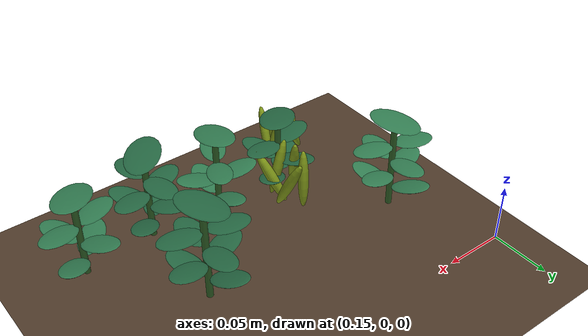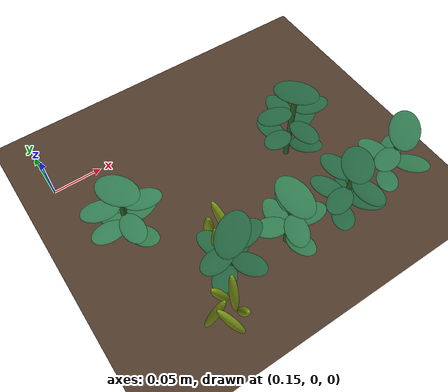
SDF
<sdf version="1.9">
 <world name="jim_field">
  <model name="ground_plane">
   <static>true</static>
   <link name="link">
    <collision name="collision">
     <geometry><plane><normal>0 0 1</normal><size>40 40</size></plane></geometry>
    </collision>
    <visual name="visual">
     <geometry><plane><normal>0 0 1</normal><size>40 40</size></plane></geometry>
     <material>
      <ambient>0.20 0.15 0.11 1</ambient>
      <diffuse>0.30 0.22 0.16 1</diffuse>
      <specular>0.01 0.01 0.01 1</specular>
     </material>
    </visual>
   </link>
  </model>
  <model name="field">
   <static>true</static>
   <pose>0.1837 -0.2516 0 0 0 0</pose>
   <model name="crop_111">
    <static>true</static>
    <pose>0.0625 0.0878 0 0 0 0</pose>
    <link name="link">
     <visual name="stem">
      <pose>0 0 0.0319 0 0 0</pose>
      <geometry><cylinder><radius>0.0025</radius><length>0.0638</length></cylinder></geometry>
      <material>
       <ambient>0.10 0.22 0.09 1</ambient>
       <diffuse>0.20 0.40 0.16 1</diffuse>
       <specular>0.05 0.06 0.05 1</specular>
      </material>
     </visual>
     <visual name="leaflet_0_0">
      <pose>0.0139 0.0105 0.0191 0 -0.300 0.6443</pose>
      <geometry><ellipsoid><radii>0.0170 0.0105 0.0016</radii></ellipsoid></geometry>
      <material>
       <ambient>0.070 0.201 0.110 1</ambient>
       <diffuse>0.131 0.381 0.241 1</diffuse>
       <specular>0.05 0.06 0.05 1</specular>
      </material>
     </visual>
     <visual name="leaflet_0_1">
      <pose>-0.0139 -0.0105 0.0191 0 -0.300 3.7858</pose>
      <geometry><ellipsoid><radii>0.0170 0.0105 0.0016</radii></ellipsoid></geometry>
      <material>
       <ambient>0.070 0.201 0.110 1</ambient>
       <diffuse>0.131 0.381 0.241 1</diffuse>
       <specular>0.05 0.06 0.05 1</specular>
      </material>
     </visual>
     <visual name="leaflet_1_0">
      <pose>-0.0072 0.0159 0.0323 0 -0.200 1.9943</pose>
      <geometry><ellipsoid><radii>0.0170 0.0105 0.0016</radii></ellipsoid></geometry>
      <material>
       <ambient>0.070 0.201 0.110 1</ambient>
       <diffuse>0.131 0.381 0.241 1</diffuse>
       <specular>0.05 0.06 0.05 1</specular>
      </material>
     </visual>
     <visual name="leaflet_1_1">
      <pose>0.0072 -0.0159 0.0323 0 -0.200 5.1358</pose>
      <geometry><ellipsoid><radii>0.0170 0.0105 0.0016</radii></ellipsoid></geometry>
      <material>
       <ambient>0.070 0.201 0.110 1</ambient>
       <diffuse>0.131 0.381 0.241 1</diffuse>
       <specular>0.05 0.06 0.05 1</specular>
      </material>
     </visual>
     <visual name="leaflet_2_0">
      <pose>-0.0170 -0.0035 0.0455 0 -0.100 3.3443</pose>
      <geometry><ellipsoid><radii>0.0170 0.0105 0.0016</radii></ellipsoid></geometry>
      <material>
       <ambient>0.070 0.201 0.110 1</ambient>
       <diffuse>0.131 0.381 0.241 1</diffuse>
       <specular>0.05 0.06 0.05 1</specular>
      </material>
     </visual>
     <visual name="leaflet_2_1">
      <pose>0.0170 0.0035 0.0455 0 -0.100 6.4858</pose>
      <geometry><ellipsoid><radii>0.0170 0.0105 0.0016</radii></ellipsoid></geometry>
      <material>
       <ambient>0.070 0.201 0.110 1</ambient>
       <diffuse>0.131 0.381 0.241 1</diffuse>
       <specular>0.05 0.06 0.05 1</specular>
      </material>
     </visual>
     <visual name="leaflet_terminal">
      <pose>0 0 0.0678 0 -0.12 0.6443</pose>
      <geometry><ellipsoid><radii>0.0215 0.0140 0.0018</radii></ellipsoid></geometry>
      <material>
       <ambient>0.070 0.201 0.110 1</ambient>
       <diffuse>0.131 0.381 0.241 1</diffuse>
       <specular>0.05 0.06 0.05 1</specular>
      </material>
     </visual>
    </link>
   </model>
   <model name="crop_112">
    <static>true</static>
    <pose>0.1218 0.0847 0 0 0 0</pose>
    <link name="link">
     <visual name="stem">
      <pose>0 0 0.0351 0 0 0</pose>
      <geometry><cylinder><radius>0.0026</radius><length>0.0702</length></cylinder></geometry>
      <material>
       <ambient>0.10 0.22 0.09 1</ambient>
       <diffuse>0.20 0.40 0.16 1</diffuse>
       <specular>0.05 0.06 0.05 1</specular>
      </material>
     </visual>
     <visual name="leaflet_0_0">
      <pose>-0.0003 0.0177 0.0211 0 -0.300 1.5856</pose>
      <geometry><ellipsoid><radii>0.0170 0.0105 0.0016</radii></ellipsoid></geometry>
      <material>
       <ambient>0.096 0.243 0.144 1</ambient>
       <diffuse>0.182 0.466 0.300 1</diffuse>
       <specular>0.05 0.06 0.05 1</specular>
      </material>
     </visual>
     <visual name="leaflet_0_1">
      <pose>0.0003 -0.0177 0.0211 0 -0.300 4.7272</pose>
      <geometry><ellipsoid><radii>0.0170 0.0105 0.0016</radii></ellipsoid></geometry>
      <material>
       <ambient>0.096 0.243 0.144 1</ambient>
       <diffuse>0.182 0.466 0.300 1</diffuse>
       <specular>0.05 0.06 0.05 1</specular>
      </material>
     </visual>
     <visual name="leaflet_1_0">
      <pose>-0.0174 0.0036 0.0356 0 -0.200 2.9356</pose>
      <geometry><ellipsoid><radii>0.0170 0.0105 0.0016</radii></ellipsoid></geometry>
      <material>
       <ambient>0.096 0.243 0.144 1</ambient>
       <diffuse>0.182 0.466 0.300 1</diffuse>
       <specular>0.05 0.06 0.05 1</specular>
      </material>
     </visual>
     <visual name="leaflet_1_1">
      <pose>0.0174 -0.0036 0.0356 0 -0.200 6.0772</pose>
      <geometry><ellipsoid><radii>0.0170 0.0105 0.0016</radii></ellipsoid></geometry>
      <material>
       <ambient>0.096 0.243 0.144 1</ambient>
       <diffuse>0.182 0.466 0.300 1</diffuse>
       <specular>0.05 0.06 0.05 1</specular>
      </material>
     </visual>
     <visual name="leaflet_2_0">
      <pose>-0.0073 -0.0162 0.0501 0 -0.100 4.2856</pose>
      <geometry><ellipsoid><radii>0.0170 0.0105 0.0016</radii></ellipsoid></geometry>
      <material>
       <ambient>0.096 0.243 0.144 1</ambient>
       <diffuse>0.182 0.466 0.300 1</diffuse>
       <specular>0.05 0.06 0.05 1</specular>
      </material>
     </visual>
     <visual name="leaflet_2_1">
      <pose>0.0073 0.0162 0.0501 0 -0.100 7.4272</pose>
      <geometry><ellipsoid><radii>0.0170 0.0105 0.0016</radii></ellipsoid></geometry>
      <material>
       <ambient>0.096 0.243 0.144 1</ambient>
       <diffuse>0.182 0.466 0.300 1</diffuse>
       <specular>0.05 0.06 0.05 1</specular>
      </material>
     </visual>
     <visual name="leaflet_terminal">
      <pose>0 0 0.0742 0 -0.12 1.5856</pose>
      <geometry><ellipsoid><radii>0.0215 0.0140 0.0018</radii></ellipsoid></geometry>
      <material>
       <ambient>0.096 0.243 0.144 1</ambient>
       <diffuse>0.182 0.466 0.300 1</diffuse>
       <specular>0.05 0.06 0.05 1</specular>
      </material>
     </visual>
    </link>
   </model>
   <model name="crop_113">
    <static>true</static>
    <pose>0.1821 0.0789 0 0 0 0</pose>
    <link name="link">
     <visual name="stem">
      <pose>0 0 0.0374 0 0 0</pose>
      <geometry><cylinder><radius>0.0026</radius><length>0.0748</length></cylinder></geometry>
      <material>
       <ambient>0.10 0.22 0.09 1</ambient>
       <diffuse>0.20 0.40 0.16 1</diffuse>
       <specular>0.05 0.06 0.05 1</specular>
      </material>
     </visual>
     <visual name="leaflet_0_0">
      <pose>-0.0124 -0.0130 0.0224 0 -0.300 3.9529</pose>
      <geometry><ellipsoid><radii>0.0170 0.0105 0.0016</radii></ellipsoid></geometry>
      <material>
       <ambient>0.072 0.203 0.112 1</ambient>
       <diffuse>0.133 0.385 0.244 1</diffuse>
       <specular>0.05 0.06 0.05 1</specular>
      </material>
     </visual>
     <visual name="leaflet_0_1">
      <pose>0.0124 0.0130 0.0224 0 -0.300 7.0945</pose>
      <geometry><ellipsoid><radii>0.0170 0.0105 0.0016</radii></ellipsoid></geometry>
      <material>
       <ambient>0.072 0.203 0.112 1</ambient>
       <diffuse>0.133 0.385 0.244 1</diffuse>
       <specular>0.05 0.06 0.05 1</specular>
      </material>
     </visual>
     <visual name="leaflet_1_0">
      <pose>0.0100 -0.0149 0.0340 0 -0.200 5.3029</pose>
      <geometry><ellipsoid><radii>0.0170 0.0105 0.0016</radii></ellipsoid></geometry>
      <material>
       <ambient>0.072 0.203 0.112 1</ambient>
       <diffuse>0.133 0.385 0.244 1</diffuse>
       <specular>0.05 0.06 0.05 1</specular>
      </material>
     </visual>
     <visual name="leaflet_1_1">
      <pose>-0.0100 0.0149 0.0340 0 -0.200 8.4445</pose>
      <geometry><ellipsoid><radii>0.0170 0.0105 0.0016</radii></ellipsoid></geometry>
      <material>
       <ambient>0.072 0.203 0.112 1</ambient>
       <diffuse>0.133 0.385 0.244 1</diffuse>
       <specular>0.05 0.06 0.05 1</specular>
      </material>
     </visual>
     <visual name="leaflet_2_0">
      <pose>0.0168 0.0065 0.0456 0 -0.100 6.6529</pose>
      <geometry><ellipsoid><radii>0.0170 0.0105 0.0016</radii></ellipsoid></geometry>
      <material>
       <ambient>0.072 0.203 0.112 1</ambient>
       <diffuse>0.133 0.385 0.244 1</diffuse>
       <specular>0.05 0.06 0.05 1</specular>
      </material>
     </visual>
     <visual name="leaflet_2_1">
      <pose>-0.0168 -0.0065 0.0456 0 -0.100 9.7945</pose>
      <geometry><ellipsoid><radii>0.0170 0.0105 0.0016</radii></ellipsoid></geometry>
      <material>
       <ambient>0.072 0.203 0.112 1</ambient>
       <diffuse>0.133 0.385 0.244 1</diffuse>
       <specular>0.05 0.06 0.05 1</specular>
      </material>
     </visual>
     <visual name="leaflet_3_0">
      <pose>-0.0027 0.0178 0.0572 0 0.000 8.0029</pose>
      <geometry><ellipsoid><radii>0.0170 0.0105 0.0016</radii></ellipsoid></geometry>
      <material>
       <ambient>0.072 0.203 0.112 1</ambient>
       <diffuse>0.133 0.385 0.244 1</diffuse>
       <specular>0.05 0.06 0.05 1</specular>
      </material>
     </visual>
     <visual name="leaflet_3_1">
      <pose>0.0027 -0.0178 0.0572 0 0.000 11.1445</pose>
      <geometry><ellipsoid><radii>0.0170 0.0105 0.0016</radii></ellipsoid></geometry>
      <material>
       <ambient>0.072 0.203 0.112 1</ambient>
       <diffuse>0.133 0.385 0.244 1</diffuse>
       <specular>0.05 0.06 0.05 1</specular>
      </material>
     </visual>
     <visual name="leaflet_terminal">
      <pose>0 0 0.0788 0 -0.12 3.9529</pose>
      <geometry><ellipsoid><radii>0.0215 0.0140 0.0018</radii></ellipsoid></geometry>
      <material>
       <ambient>0.072 0.203 0.112 1</ambient>
       <diffuse>0.133 0.385 0.244 1</diffuse>
       <specular>0.05 0.06 0.05 1</specular>
      </material>
     </visual>
    </link>
   </model>
   <model name="crop_114">
    <static>true</static>
    <pose>0.2445 0.0859 0 0 0 0</pose>
    <link name="link">
     <visual name="stem">
      <pose>0 0 0.0346 0 0 0</pose>
      <geometry><cylinder><radius>0.0026</radius><length>0.0691</length></cylinder></geometry>
      <material>
       <ambient>0.10 0.22 0.09 1</ambient>
       <diffuse>0.20 0.40 0.16 1</diffuse>
       <specular>0.05 0.06 0.05 1</specular>
      </material>
     </visual>
     <visual name="leaflet_0_0">
      <pose>0.0130 0.0120 0.0207 0 -0.300 0.7439</pose>
      <geometry><ellipsoid><radii>0.0170 0.0105 0.0016</radii></ellipsoid></geometry>
      <material>
       <ambient>0.093 0.238 0.141 1</ambient>
       <diffuse>0.176 0.456 0.294 1</diffuse>
       <specular>0.05 0.06 0.05 1</specular>
      </material>
     </visual>
     <visual name="leaflet_0_1">
      <pose>-0.0130 -0.0120 0.0207 0 -0.300 3.8855</pose>
      <geometry><ellipsoid><radii>0.0170 0.0105 0.0016</radii></ellipsoid></geometry>
      <material>
       <ambient>0.093 0.238 0.141 1</ambient>
       <diffuse>0.176 0.456 0.294 1</diffuse>
       <specular>0.05 0.06 0.05 1</specular>
      </material>
     </visual>
     <visual name="leaflet_1_0">
      <pose>-0.0088 0.0153 0.0350 0 -0.200 2.0939</pose>
      <geometry><ellipsoid><radii>0.0170 0.0105 0.0016</radii></ellipsoid></geometry>
      <material>
       <ambient>0.093 0.238 0.141 1</ambient>
       <diffuse>0.176 0.456 0.294 1</diffuse>
       <specular>0.05 0.06 0.05 1</specular>
      </material>
     </visual>
     <visual name="leaflet_1_1">
      <pose>0.0088 -0.0153 0.0350 0 -0.200 5.2355</pose>
      <geometry><ellipsoid><radii>0.0170 0.0105 0.0016</radii></ellipsoid></geometry>
      <material>
       <ambient>0.093 0.238 0.141 1</ambient>
       <diffuse>0.176 0.456 0.294 1</diffuse>
       <specular>0.05 0.06 0.05 1</specular>
      </material>
     </visual>
     <visual name="leaflet_2_0">
      <pose>-0.0169 -0.0053 0.0493 0 -0.100 3.4439</pose>
      <geometry><ellipsoid><radii>0.0170 0.0105 0.0016</radii></ellipsoid></geometry>
      <material>
       <ambient>0.093 0.238 0.141 1</ambient>
       <diffuse>0.176 0.456 0.294 1</diffuse>
       <specular>0.05 0.06 0.05 1</specular>
      </material>
     </visual>
     <visual name="leaflet_2_1">
      <pose>0.0169 0.0053 0.0493 0 -0.100 6.5855</pose>
      <geometry><ellipsoid><radii>0.0170 0.0105 0.0016</radii></ellipsoid></geometry>
      <material>
       <ambient>0.093 0.238 0.141 1</ambient>
       <diffuse>0.176 0.456 0.294 1</diffuse>
       <specular>0.05 0.06 0.05 1</specular>
      </material>
     </visual>
     <visual name="leaflet_terminal">
      <pose>0 0 0.0731 0 -0.12 0.7439</pose>
      <geometry><ellipsoid><radii>0.0215 0.0140 0.0018</radii></ellipsoid></geometry>
      <material>
       <ambient>0.093 0.238 0.141 1</ambient>
       <diffuse>0.176 0.456 0.294 1</diffuse>
       <specular>0.05 0.06 0.05 1</specular>
      </material>
     </visual>
    </link>
   </model>
   <model name="crop_127">
    <static>true</static>
    <pose>0.0042 0.1655 0 0 0 0</pose>
    <link name="link">
     <visual name="stem">
      <pose>0 0 0.0388 0 0 0</pose>
      <geometry><cylinder><radius>0.0026</radius><length>0.0776</length></cylinder></geometry>
      <material>
       <ambient>0.10 0.22 0.09 1</ambient>
       <diffuse>0.20 0.40 0.16 1</diffuse>
       <specular>0.05 0.06 0.05 1</specular>
      </material>
     </visual>
     <visual name="leaflet_0_0">
      <pose>0.0071 -0.0167 0.0233 0 -0.300 5.1135</pose>
      <geometry><ellipsoid><radii>0.0170 0.0105 0.0016</radii></ellipsoid></geometry>
      <material>
       <ambient>0.099 0.248 0.149 1</ambient>
       <diffuse>0.188 0.477 0.308 1</diffuse>
       <specular>0.05 0.06 0.05 1</specular>
      </material>
     </visual>
     <visual name="leaflet_0_1">
      <pose>-0.0071 0.0167 0.0233 0 -0.300 8.2551</pose>
      <geometry><ellipsoid><radii>0.0170 0.0105 0.0016</radii></ellipsoid></geometry>
      <material>
       <ambient>0.099 0.248 0.149 1</ambient>
       <diffuse>0.188 0.477 0.308 1</diffuse>
       <specular>0.05 0.06 0.05 1</specular>
      </material>
     </visual>
     <visual name="leaflet_1_0">
      <pose>0.0178 0.0033 0.0353 0 -0.200 6.4635</pose>
      <geometry><ellipsoid><radii>0.0170 0.0105 0.0016</radii></ellipsoid></geometry>
      <material>
       <ambient>0.099 0.248 0.149 1</ambient>
       <diffuse>0.188 0.477 0.308 1</diffuse>
       <specular>0.05 0.06 0.05 1</specular>
      </material>
     </visual>
     <visual name="leaflet_1_1">
      <pose>-0.0178 -0.0033 0.0353 0 -0.200 9.6051</pose>
      <geometry><ellipsoid><radii>0.0170 0.0105 0.0016</radii></ellipsoid></geometry>
      <material>
       <ambient>0.099 0.248 0.149 1</ambient>
       <diffuse>0.188 0.477 0.308 1</diffuse>
       <specular>0.05 0.06 0.05 1</specular>
      </material>
     </visual>
     <visual name="leaflet_2_0">
      <pose>0.0007 0.0181 0.0473 0 -0.100 7.8135</pose>
      <geometry><ellipsoid><radii>0.0170 0.0105 0.0016</radii></ellipsoid></geometry>
      <material>
       <ambient>0.099 0.248 0.149 1</ambient>
       <diffuse>0.188 0.477 0.308 1</diffuse>
       <specular>0.05 0.06 0.05 1</specular>
      </material>
     </visual>
     <visual name="leaflet_2_1">
      <pose>-0.0007 -0.0181 0.0473 0 -0.100 10.9551</pose>
      <geometry><ellipsoid><radii>0.0170 0.0105 0.0016</radii></ellipsoid></geometry>
      <material>
       <ambient>0.099 0.248 0.149 1</ambient>
       <diffuse>0.188 0.477 0.308 1</diffuse>
       <specular>0.05 0.06 0.05 1</specular>
      </material>
     </visual>
     <visual name="leaflet_3_0">
      <pose>-0.0175 0.0047 0.0593 0 0.000 9.1635</pose>
      <geometry><ellipsoid><radii>0.0170 0.0105 0.0016</radii></ellipsoid></geometry>
      <material>
       <ambient>0.099 0.248 0.149 1</ambient>
       <diffuse>0.188 0.477 0.308 1</diffuse>
       <specular>0.05 0.06 0.05 1</specular>
      </material>
     </visual>
     <visual name="leaflet_3_1">
      <pose>0.0175 -0.0047 0.0593 0 0.000 12.3051</pose>
      <geometry><ellipsoid><radii>0.0170 0.0105 0.0016</radii></ellipsoid></geometry>
      <material>
       <ambient>0.099 0.248 0.149 1</ambient>
       <diffuse>0.188 0.477 0.308 1</diffuse>
       <specular>0.05 0.06 0.05 1</specular>
      </material>
     </visual>
     <visual name="leaflet_terminal">
      <pose>0 0 0.0816 0 -0.12 5.1135</pose>
      <geometry><ellipsoid><radii>0.0215 0.0140 0.0018</radii></ellipsoid></geometry>
      <material>
       <ambient>0.099 0.248 0.149 1</ambient>
       <diffuse>0.188 0.477 0.308 1</diffuse>
       <specular>0.05 0.06 0.05 1</specular>
      </material>
     </visual>
    </link>
   </model>
   <model name="crop_130">
    <static>true</static>
    <pose>0.1835 0.1646 0 0 0 0</pose>
    <link name="link">
     <visual name="stem">
      <pose>0 0 0.0416 0 0 0</pose>
      <geometry><cylinder><radius>0.0027</radius><length>0.0832</length></cylinder></geometry>
      <material>
       <ambient>0.10 0.22 0.09 1</ambient>
       <diffuse>0.20 0.40 0.16 1</diffuse>
       <specular>0.05 0.06 0.05 1</specular>
      </material>
     </visual>
     <visual name="leaflet_0_0">
      <pose>0.0083 -0.0165 0.0250 0 -0.300 5.1805</pose>
      <geometry><ellipsoid><radii>0.0170 0.0105 0.0016</radii></ellipsoid></geometry>
      <material>
       <ambient>0.070 0.200 0.110 1</ambient>
       <diffuse>0.130 0.380 0.240 1</diffuse>
       <specular>0.05 0.06 0.05 1</specular>
      </material>
     </visual>
     <visual name="leaflet_0_1">
      <pose>-0.0083 0.0165 0.0250 0 -0.300 8.3221</pose>
      <geometry><ellipsoid><radii>0.0170 0.0105 0.0016</radii></ellipsoid></geometry>
      <material>
       <ambient>0.070 0.200 0.110 1</ambient>
       <diffuse>0.130 0.380 0.240 1</diffuse>
       <specular>0.05 0.06 0.05 1</specular>
      </material>
     </visual>
     <visual name="leaflet_1_0">
      <pose>0.0179 0.0045 0.0378 0 -0.200 6.5305</pose>
      <geometry><ellipsoid><radii>0.0170 0.0105 0.0016</radii></ellipsoid></geometry>
      <material>
       <ambient>0.070 0.200 0.110 1</ambient>
       <diffuse>0.130 0.380 0.240 1</diffuse>
       <specular>0.05 0.06 0.05 1</specular>
      </material>
     </visual>
     <visual name="leaflet_1_1">
      <pose>-0.0179 -0.0045 0.0378 0 -0.200 9.6721</pose>
      <geometry><ellipsoid><radii>0.0170 0.0105 0.0016</radii></ellipsoid></geometry>
      <material>
       <ambient>0.070 0.200 0.110 1</ambient>
       <diffuse>0.130 0.380 0.240 1</diffuse>
       <specular>0.05 0.06 0.05 1</specular>
      </material>
     </visual>
     <visual name="leaflet_2_0">
      <pose>-0.0005 0.0184 0.0507 0 -0.100 7.8805</pose>
      <geometry><ellipsoid><radii>0.0170 0.0105 0.0016</radii></ellipsoid></geometry>
      <material>
       <ambient>0.070 0.200 0.110 1</ambient>
       <diffuse>0.130 0.380 0.240 1</diffuse>
       <specular>0.05 0.06 0.05 1</specular>
      </material>
     </visual>
     <visual name="leaflet_2_1">
      <pose>0.0005 -0.0184 0.0507 0 -0.100 11.0221</pose>
      <geometry><ellipsoid><radii>0.0170 0.0105 0.0016</radii></ellipsoid></geometry>
      <material>
       <ambient>0.070 0.200 0.110 1</ambient>
       <diffuse>0.130 0.380 0.240 1</diffuse>
       <specular>0.05 0.06 0.05 1</specular>
      </material>
     </visual>
     <visual name="leaflet_3_0">
      <pose>-0.0181 0.0036 0.0636 0 0.000 9.2305</pose>
      <geometry><ellipsoid><radii>0.0170 0.0105 0.0016</radii></ellipsoid></geometry>
      <material>
       <ambient>0.070 0.200 0.110 1</ambient>
       <diffuse>0.130 0.380 0.240 1</diffuse>
       <specular>0.05 0.06 0.05 1</specular>
      </material>
     </visual>
     <visual name="leaflet_3_1">
      <pose>0.0181 -0.0036 0.0636 0 0.000 12.3721</pose>
      <geometry><ellipsoid><radii>0.0170 0.0105 0.0016</radii></ellipsoid></geometry>
      <material>
       <ambient>0.070 0.200 0.110 1</ambient>
       <diffuse>0.130 0.380 0.240 1</diffuse>
       <specular>0.05 0.06 0.05 1</specular>
      </material>
     </visual>
     <visual name="leaflet_terminal">
      <pose>0 0 0.0872 0 -0.12 5.1805</pose>
      <geometry><ellipsoid><radii>0.0215 0.0140 0.0018</radii></ellipsoid></geometry>
      <material>
       <ambient>0.070 0.200 0.110 1</ambient>
       <diffuse>0.130 0.380 0.240 1</diffuse>
       <specular>0.05 0.06 0.05 1</specular>
      </material>
     </visual>
    </link>
   </model>
   <model name="weed_4">
    <static>true</static>
    <pose>0.0363 0.0534 0 0 0 0</pose>
    <link name="link">
     <visual name="blade_0">
      <pose>-0.0125 0.0013 0.0229 -0.0395 -0.3936 3.0415</pose>
      <geometry><ellipsoid><radii>0.0040 0.0040 0.0229</radii></ellipsoid></geometry>
      <material>
       <ambient>0.24 0.30 0.04 1</ambient>
       <diffuse>0.52 0.62 0.10 1</diffuse>
       <specular>0.05 0.06 0.05 1</specular>
      </material>
     </visual>
     <visual name="blade_1">
      <pose>-0.0051 -0.0115 0.0229 0.4909 -0.2192 4.2924</pose>
      <geometry><ellipsoid><radii>0.0040 0.0040 0.0229</radii></ellipsoid></geometry>
      <material>
       <ambient>0.24 0.30 0.04 1</ambient>
       <diffuse>0.52 0.62 0.10 1</diffuse>
       <specular>0.05 0.06 0.05 1</specular>
      </material>
     </visual>
     <visual name="blade_2">
      <pose>0.0079 -0.0098 0.0229 0.3151 0.2523 5.3875</pose>
      <geometry><ellipsoid><radii>0.0040 0.0040 0.0229</radii></ellipsoid></geometry>
      <material>
       <ambient>0.24 0.30 0.04 1</ambient>
       <diffuse>0.52 0.62 0.10 1</diffuse>
       <specular>0.05 0.06 0.05 1</specular>
      </material>
     </visual>
     <visual name="blade_3">
      <pose>0.0101 0.0075 0.0229 -0.1959 0.2658 6.9184</pose>
      <geometry><ellipsoid><radii>0.0040 0.0040 0.0229</radii></ellipsoid></geometry>
      <material>
       <ambient>0.24 0.30 0.04 1</ambient>
       <diffuse>0.52 0.62 0.10 1</diffuse>
       <specular>0.05 0.06 0.05 1</specular>
      </material>
     </visual>
     <visual name="blade_4">
      <pose>0.0002 0.0126 0.0229 -0.3712 0.0045 7.8418</pose>
      <geometry><ellipsoid><radii>0.0040 0.0040 0.0229</radii></ellipsoid></geometry>
      <material>
       <ambient>0.24 0.30 0.04 1</ambient>
       <diffuse>0.52 0.62 0.10 1</diffuse>
       <specular>0.05 0.06 0.05 1</specular>
      </material>
     </visual>
    </link>
   </model>
   <model name="weed_6">
    <static>true</static>
    <pose>0.0686 0.1100 0 0 0 0</pose>
    <link name="link">
     <visual name="blade_0">
      <pose>-0.0119 -0.0074 0.0256 0.1118 -0.1798 3.6977</pose>
      <geometry><ellipsoid><radii>0.0045 0.0045 0.0256</radii></ellipsoid></geometry>
      <material>
       <ambient>0.24 0.30 0.04 1</ambient>
       <diffuse>0.52 0.62 0.10 1</diffuse>
       <specular>0.05 0.06 0.05 1</specular>
      </material>
     </visual>
     <visual name="blade_1">
      <pose>0.0001 -0.0141 0.0256 0.2943 0.0016 4.7178</pose>
      <geometry><ellipsoid><radii>0.0045 0.0045 0.0256</radii></ellipsoid></geometry>
      <material>
       <ambient>0.24 0.30 0.04 1</ambient>
       <diffuse>0.52 0.62 0.10 1</diffuse>
       <specular>0.05 0.06 0.05 1</specular>
      </material>
     </visual>
     <visual name="blade_2">
      <pose>0.0124 -0.0066 0.0256 0.2470 0.4657 5.7956</pose>
      <geometry><ellipsoid><radii>0.0045 0.0045 0.0256</radii></ellipsoid></geometry>
      <material>
       <ambient>0.24 0.30 0.04 1</ambient>
       <diffuse>0.52 0.62 0.10 1</diffuse>
       <specular>0.05 0.06 0.05 1</specular>
      </material>
     </visual>
     <visual name="blade_3">
      <pose>0.0078 0.0117 0.0256 -0.3777 0.2528 7.2641</pose>
      <geometry><ellipsoid><radii>0.0045 0.0045 0.0256</radii></ellipsoid></geometry>
      <material>
       <ambient>0.24 0.30 0.04 1</ambient>
       <diffuse>0.52 0.62 0.10 1</diffuse>
       <specular>0.05 0.06 0.05 1</specular>
      </material>
     </visual>
     <visual name="blade_4">
      <pose>-0.0063 0.0126 0.0256 -0.1656 -0.0823 8.3153</pose>
      <geometry><ellipsoid><radii>0.0045 0.0045 0.0256</radii></ellipsoid></geometry>
      <material>
       <ambient>0.24 0.30 0.04 1</ambient>
       <diffuse>0.52 0.62 0.10 1</diffuse>
       <specular>0.05 0.06 0.05 1</specular>
      </material>
     </visual>
    </link>
   </model>
  </model>
 </world>
</sdf>
